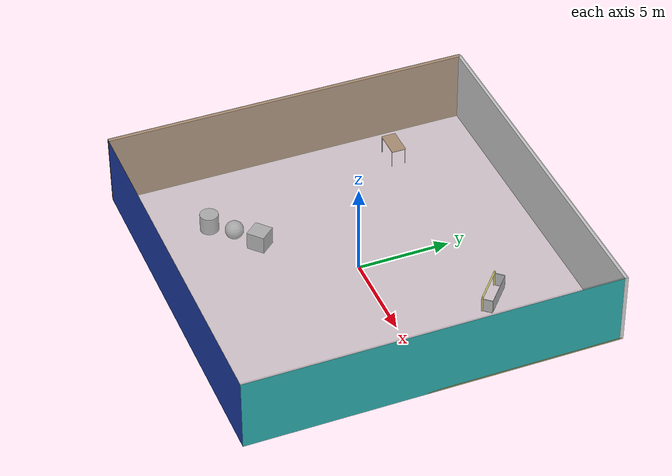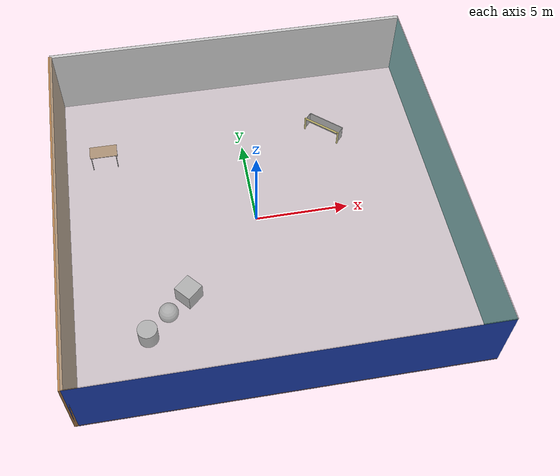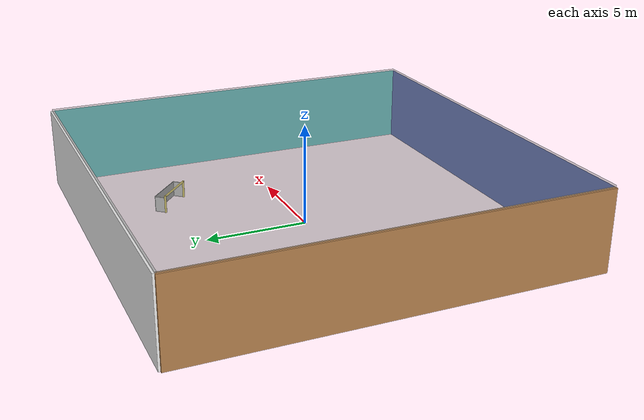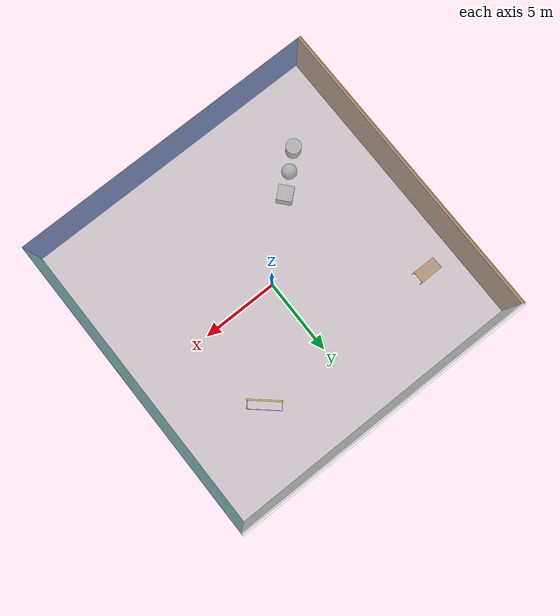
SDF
<sdf version="1.4">
 <world name="default">
  <physics type="ode">
   <max_step_size>0.001</max_step_size>
   <real_time_factor>1</real_time_factor>
   <real_time_update_rate>1000</real_time_update_rate>
   <gravity>0 0 -9.8</gravity>
  </physics>
  <scene><ambient>0.4 0.4 0.4 1</ambient><background>0.7 0.7 0.7 1</background><shadows>1</shadows></scene>
  <model name="Surrounding">
   <static>1</static>
   <link name="Ceiling">
    <collision name="Ceiling_Collision"><geometry><box><size>20 20 0.1</size></box></geometry></collision>
    <visual name="Ceiling_Visual">
     <geometry><box><size>20 20 0.1</size></box></geometry>
     <material>
      <script><uri>file://media/materials/scripts/gazebo.material</uri><name>Gazebo/GreyTransparent</name></script>
     </material>
    </visual>
    <pose>0 0 4.05 0 0 0</pose>
   </link>
   <link name="Wall_South">
    <collision name="Wall_South_Collision">
     <geometry><box><size>20 0 4</size></box></geometry>
     <pose>0 0 2 0 -0 0</pose>
    </collision>
    <visual name="Wall_South_Visual">
     <pose>0 0 2 0 -0 0</pose>
     <geometry><box><size>20 0 4</size></box></geometry>
     <material>
      <script><uri>file://media/materials/scripts/gazebo.material</uri><name>Gazebo/BlueLaser</name></script>
     </material>
    </visual>
    <velocity_decay><linear>0</linear><angular>0</angular></velocity_decay>
    <pose>0 -10 0 0 -0 0</pose>
   </link>
   <link name="Wall_East">
    <collision name="Wall_21_Collision">
     <geometry><box><size>20 0 4</size></box></geometry>
     <pose>0 0 2 0 -0 0</pose>
    </collision>
    <visual name="Wall_21_Visual">
     <pose>0 0 2 0 -0 0</pose>
     <geometry><box><size>20 0 4</size></box></geometry>
     <material>
      <script><uri>file://media/materials/scripts/gazebo.material</uri><name>Gazebo/TurquoiseGlow</name></script>
     </material>
    </visual>
    <velocity_decay><linear>0</linear><angular>0</angular></velocity_decay>
    <pose>10 0 0 0 -0 1.5708</pose>
   </link>
   <link name="Wall_North">
    <collision name="Wall_22_Collision">
     <geometry><box><size>20 0.2 4</size></box></geometry>
     <pose>0 0 2 0 -0 0</pose>
    </collision>
    <visual name="Wall_22_Visual">
     <pose>0 0 2 0 -0 0</pose>
     <geometry><box><size>20 0.2 4</size></box></geometry>
     <material>
      <script><uri>file://media/materials/scripts/gazebo.material</uri><name>Gazebo/WhiteGlow</name></script>
     </material>
    </visual>
    <velocity_decay><linear>0</linear><angular>0</angular></velocity_decay>
    <pose>0 10 0 0 -0 0</pose>
   </link>
   <link name="Wall_West">
    <collision name="Wall_23_Collision">
     <geometry><box><size>20 0.2 4</size></box></geometry>
     <pose>0 0 2 0 -0 0</pose>
    </collision>
    <visual name="Wall_23_Visual">
     <pose>0 0 2 0 -0 0</pose>
     <geometry><box><size>20 0.2 4</size></box></geometry>
     <material>
      <script><uri>file://media/materials/scripts/gazebo.material</uri><name>Gazebo/Wood</name></script>
     </material>
    </visual>
    <velocity_decay><linear>0</linear><angular>0</angular></velocity_decay>
    <pose>-10 0 0 0 0 -1.5708</pose>
   </link>
   <link name="Ground_link">
    <collision name="collision">
     <pose>0 0 .05 0 -0 0</pose>
     <geometry><box><size>20 20 0.1</size></box></geometry>
    </collision>
    <visual name="visual">
     <pose>0 0 .05 0 -0 0</pose>
     <geometry><box><size>20 20 0.1</size></box></geometry>
     <material>
      <script>
       <uri>file://media/materials/scripts/gazebo.material</uri>
       <name>Gazebo/OrangeTransparent</name>
      </script>
     </material>
    </visual>
   </link>
   <static>1</static>
  </model>
  <spherical_coordinates>
   <surface_model>EARTH_WGS84</surface_model>
   <latitude_deg>0</latitude_deg>
   <longitude_deg>0</longitude_deg>
   <elevation>0</elevation>
   <heading_deg>0</heading_deg>
  </spherical_coordinates>
  <light name="lightball_0" type="diffuse">
   <diffuse>0.8 0.8 0.8 1</diffuse>
   <specular>0.2 0.2 0.2 1</specular>
   <attenuation>
    <range>100</range>
    <constant>0.7</constant>
    <linear>0.01</linear>
    <quadratic>0.001</quadratic>
   </attenuation>
   <direction>-0.5 0.1 -0.9</direction>
   <pose>-3.6097096926 0.539363147321 1.78753598359 0 0 0</pose>
  </light>
  <light name="lightball_1" type="diffuse">
   <diffuse>0.8 0.8 0.8 1</diffuse>
   <specular>0.2 0.2 0.2 1</specular>
   <attenuation>
    <range>100</range>
    <constant>0.7</constant>
    <linear>0.01</linear>
    <quadratic>0.001</quadratic>
   </attenuation>
   <direction>-0.5 0.1 -0.9</direction>
   <pose>4.69171933344 -8.8822829705 0.739185051598 0 0 0</pose>
  </light>
  <light name="lightball_2" type="diffuse">
   <diffuse>0.8 0.8 0.8 1</diffuse>
   <specular>0.2 0.2 0.2 1</specular>
   <attenuation>
    <range>100</range>
    <constant>0.7</constant>
    <linear>0.01</linear>
    <quadratic>0.001</quadratic>
   </attenuation>
   <direction>-0.5 0.1 -0.9</direction>
   <pose>-0.48941270122 8.19715954063 1.70323371564 0 0 0</pose>
  </light>
  <light name="lightball_3" type="diffuse">
   <diffuse>0.8 0.8 0.8 1</diffuse>
   <specular>0.2 0.2 0.2 1</specular>
   <attenuation>
    <range>100</range>
    <constant>0.7</constant>
    <linear>0.01</linear>
    <quadratic>0.001</quadratic>
   </attenuation>
   <direction>-0.5 0.1 -0.9</direction>
   <pose>-5.34228358387 4.66218617358 0.654469410361 0 0 0</pose>
  </light>
  <light name="lightball_4" type="diffuse">
   <diffuse>0.8 0.8 0.8 1</diffuse>
   <specular>0.2 0.2 0.2 1</specular>
   <attenuation>
    <range>100</range>
    <constant>0.7</constant>
    <linear>0.01</linear>
    <quadratic>0.001</quadratic>
   </attenuation>
   <direction>-0.5 0.1 -0.9</direction>
   <pose>5.29087937349 2.54011037684 3.23792934517 0 0 0</pose>
  </light>
  <light name="lightball_5" type="diffuse">
   <diffuse>0.8 0.8 0.8 1</diffuse>
   <specular>0.2 0.2 0.2 1</specular>
   <attenuation>
    <range>100</range>
    <constant>0.7</constant>
    <linear>0.01</linear>
    <quadratic>0.001</quadratic>
   </attenuation>
   <direction>-0.5 0.1 -0.9</direction>
   <pose>5.54723101391 -3.5562406998 1.63672588387 0 0 0</pose>
  </light>
  <light name="lightball_6" type="diffuse">
   <diffuse>0.8 0.8 0.8 1</diffuse>
   <specular>0.2 0.2 0.2 1</specular>
   <attenuation>
    <range>100</range>
    <constant>0.7</constant>
    <linear>0.01</linear>
    <quadratic>0.001</quadratic>
   </attenuation>
   <direction>-0.5 0.1 -0.9</direction>
   <pose>-5.33786329497 2.24380328553 2.30087578509 0 0 0</pose>
  </light>
  <light name="lightball_7" type="diffuse">
   <diffuse>0.8 0.8 0.8 1</diffuse>
   <specular>0.2 0.2 0.2 1</specular>
   <attenuation>
    <range>100</range>
    <constant>0.7</constant>
    <linear>0.01</linear>
    <quadratic>0.001</quadratic>
   </attenuation>
   <direction>-0.5 0.1 -0.9</direction>
   <pose>4.33274368078 -7.01509729759 2.74917250404 0 0 0</pose>
  </light>
  <light name="lightball_8" type="diffuse">
   <diffuse>0.8 0.8 0.8 1</diffuse>
   <specular>0.2 0.2 0.2 1</specular>
   <attenuation>
    <range>100</range>
    <constant>0.7</constant>
    <linear>0.01</linear>
    <quadratic>0.001</quadratic>
   </attenuation>
   <direction>-0.5 0.1 -0.9</direction>
   <pose>-6.29699438021 -3.95751388177 1.28410513081 0 0 0</pose>
  </light>
  <light name="lightball_9" type="diffuse">
   <diffuse>0.8 0.8 0.8 1</diffuse>
   <specular>0.2 0.2 0.2 1</specular>
   <attenuation>
    <range>100</range>
    <constant>0.7</constant>
    <linear>0.01</linear>
    <quadratic>0.001</quadratic>
   </attenuation>
   <direction>-0.5 0.1 -0.9</direction>
   <pose>-6.63076298591 -5.75072268117 0.969612813406 0 0 0</pose>
  </light>
  <light name="lightball_10" type="diffuse">
   <diffuse>0.8 0.8 0.8 1</diffuse>
   <specular>0.2 0.2 0.2 1</specular>
   <attenuation>
    <range>100</range>
    <constant>0.7</constant>
    <linear>0.01</linear>
    <quadratic>0.001</quadratic>
   </attenuation>
   <direction>-0.5 0.1 -0.9</direction>
   <pose>-1.93785005086 -5.32786540258 1.45940986939 0 0 0</pose>
  </light>
  <include><uri>model://table</uri><pose>-7.7505283107 5.19322399257 0 0 0 3.13947971499</pose></include>
  <include>
   <uri>model://textured_shapes</uri>
   <pose>-5.25178117029 -4.88300539628 0 0 0 2.29527458765</pose>
  </include>
  <include>
   <uri>model://robocup_3Dsim_goal</uri>
   <pose>4.65899122519 5.16298816788 0 0 0 0.846827916457</pose>
  </include>
 </world>
</sdf>

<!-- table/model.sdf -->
<sdf version="1.5">
  <model name="table">
    <static>true</static>
    <link name="link">
      <collision name="surface">
        <pose>0 0 1.0 0 0 0</pose>
        <geometry>
          <box>
            <size>1.5 0.8 0.03</size>
          </box>
        </geometry>
        <surface>
          <friction>
            <ode>
              <mu>0.6</mu>
              <mu2>0.6</mu2>
            </ode>
          </friction>
        </surface>
      </collision>
      <visual name="visual1">
        <pose>0 0 1.0 0 0 0</pose>
        <geometry>
          <box>
            <size>1.5 0.8 0.03</size>
          </box>
        </geometry>
        <material>
          <script>
            <uri>model://media/materials/scripts/gazebo.material</uri>
            <name>Gazebo/Wood</name>
          </script>
        </material>
      </visual>
      <collision name="front_left_leg">
        <pose>0.68 0.38 0.5 0 0 0</pose>
        <geometry>
          <cylinder>
            <radius>0.02</radius>
            <length>1.0</length>
          </cylinder>
        </geometry>
      </collision>
      <visual name="front_left_leg">
        <pose>0.68 0.38 0.5 0 0 0</pose>
        <geometry>
          <cylinder>
            <radius>0.02</radius>
            <length>1.0</length>
          </cylinder>
        </geometry>
        <material>
          <script>
            <uri>model://media/materials/scripts/gazebo.material</uri>
            <name>Gazebo/Grey</name>
          </script>
        </material>
      </visual>
      <collision name="front_right_leg">
        <pose>0.68 -0.38 0.5 0 0 0</pose>
        <geometry>
          <cylinder>
            <radius>0.02</radius>
            <length>1.0</length>
          </cylinder>
        </geometry>
      </collision>
      <visual name="front_right_leg">
        <pose>0.68 -0.38 0.5 0 0 0</pose>
        <geometry>
          <cylinder>
            <radius>0.02</radius>
            <length>1.0</length>
          </cylinder>
        </geometry>
        <material>
          <script>
            <uri>model://media/materials/scripts/gazebo.material</uri>
            <name>Gazebo/Grey</name>
          </script>
        </material>
      </visual>
      <collision name="back_right_leg">
        <pose>-0.68 -0.38 0.5 0 0 0</pose>
        <geometry>
          <cylinder>
            <radius>0.02</radius>
            <length>1.0</length>
          </cylinder>
        </geometry>
      </collision>
      <visual name="back_right_leg">
        <pose>-0.68 -0.38 0.5 0 0 0</pose>
        <geometry>
          <cylinder>
            <radius>0.02</radius>
            <length>1.0</length>
          </cylinder>
        </geometry>
        <material>
          <script>
            <uri>model://media/materials/scripts/gazebo.material</uri>
            <name>Gazebo/Grey</name>
          </script>
        </material>
      </visual>
      <collision name="back_left_leg">
        <pose>-0.68 0.38 0.5 0 0 0</pose>
        <geometry>
          <cylinder>
            <radius>0.02</radius>
            <length>1.0</length>
          </cylinder>
        </geometry>
      </collision>
      <visual name="back_left_leg">
        <pose>-0.68 0.38 0.5 0 0 0</pose>
        <geometry>
          <cylinder>
            <radius>0.02</radius>
            <length>1.0</length>
          </cylinder>
        </geometry>
        <material>
          <script>
            <uri>model://media/materials/scripts/gazebo.material</uri>
            <name>Gazebo/Grey</name>
          </script>
        </material>
      </visual>
    </link>
  </model>
</sdf>

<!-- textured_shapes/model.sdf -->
<sdf version="1.6">
  <model name="textured_shapes">
    <pose>0 0 0.5 0 0 0</pose>
    <link name="box">
      <pose>0 -1.5 0 0 0 0</pose>
      <collision name="collision">
        <geometry>
          <box>
            <size>1 1 1</size>
          </box>
        </geometry>
      </collision>
      <visual name="visual">
        <geometry>
          <box>
            <size>1 1 1</size>
          </box>
        </geometry>
        <material>
          <script>
            <uri>model://../model_source/models/textured_shapes/materials/scripts</uri>
            <uri>model://../model_source/models/textured_shapes/materials/textures</uri>
            <name>TexturedShape/Squares</name>
          </script>
        </material>
      </visual>
    </link>
    <link name="sphere">
      <collision name="collision">
        <geometry>
          <sphere>
            <radius>0.5</radius>
          </sphere>
        </geometry>
      </collision>
      <visual name="visual">
        <geometry>
          <sphere>
            <radius>0.5</radius>
          </sphere>
        </geometry>
        <material>
          <script>
            <uri>model://../model_source/models/textured_shapes/materials/scripts</uri>
            <uri>model://../model_source/models/textured_shapes/materials/textures</uri>
            <name>TexturedShape/Squares</name>
          </script>
        </material>
      </visual>
    </link>
    <link name="cylinder">
      <pose>0 1.5 0 0 0 0</pose>
      <collision name="collision">
        <geometry>
          <cylinder>
            <radius>0.5</radius>
            <length>1</length>
          </cylinder>
        </geometry>
      </collision>
      <visual name="visual">
        <geometry>
          <cylinder>
            <radius>0.5</radius>
            <length>1</length>
          </cylinder>
        </geometry>
        <material>
          <script>
            <uri>model://../model_source/models/textured_shapes/materials/scripts</uri>
            <uri>model://../model_source/models/textured_shapes/materials/textures</uri>
            <name>TexturedShape/Squares</name>
          </script>
        </material>
      </visual>
    </link>
  </model>
</sdf>

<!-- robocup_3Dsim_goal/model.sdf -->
<sdf version="1.5">
  <model name="robocup_3d_goal">
    <static>true</static>
    <link name="left_post">
      <pose>0 1.05 0.45 0 0 0</pose>
      <collision name="collision">
        <geometry>
          <cylinder>
            <radius>0.05</radius>
            <length>0.9</length>
          </cylinder>
        </geometry>
      </collision>
      <visual name="visual">
        <geometry>
          <cylinder>
            <radius>0.05</radius>
            <length>0.9</length>
          </cylinder>
        </geometry>
        <material>
          <script>
            <uri>file://media/materials/scripts/gazebo.material</uri>
            <name>Gazebo/ZincYellow</name>
          </script>
        </material>
      </visual>
    </link>
    <link name="left_support_horiz_lower">
      <pose>0.30 1.05 0.01 0 0 0</pose>
      <collision name="collision">
        <geometry>
          <box>
            <size>0.50 0.02 0.02</size>
          </box>
        </geometry>
      </collision>
      <visual name="visual">
        <geometry>
          <box>
            <size>0.50 0.02 0.02</size>
          </box>
        </geometry>
        <material>
          <script>
            <uri>file://media/materials/scripts/gazebo.material</uri>
            <name>Gazebo/White</name>
          </script>
        </material>
      </visual>
    </link>
    <link name="left_support_horiz_upper">
      <pose>0.30 1.05 0.79 0 0 0</pose>
      <collision name="collision">
        <geometry>
          <box>
            <size>0.50 0.02 0.02</size>
          </box>
        </geometry>
      </collision>
      <visual name="visual">
        <geometry>
          <box>
            <size>0.50 0.02 0.02</size>
          </box>
        </geometry>
        <material>
          <script>
            <uri>file://media/materials/scripts/gazebo.material</uri>
            <name>Gazebo/White</name>
          </script>
        </material>
      </visual>
    </link>
    <link name="left_support_vertical">
      <pose>0.56 1.05 0.4 0 1.5708 0</pose>
      <collision name="collision">
        <geometry>
          <box>
            <size>0.80 0.02 0.02</size>
          </box>
        </geometry>
      </collision>
      <visual name="visual">
        <geometry>
          <box>
            <size>0.80 0.02 0.02</size>
          </box>
        </geometry>
        <material>
          <script>
            <uri>file://media/materials/scripts/gazebo.material</uri>
            <name>Gazebo/White</name>
          </script>
        </material>
      </visual>
    </link>
    <link name="right_support_horiz_lower">
      <pose>0.30 -1.05 0.01 0 0 0</pose>
      <collision name="collision">
        <geometry>
          <box>
            <size>0.50 0.02 0.02</size>
          </box>
        </geometry>
      </collision>
      <visual name="visual">
        <geometry>
          <box>
            <size>0.50 0.02 0.02</size>
          </box>
        </geometry>
        <material>
          <script>
            <uri>file://media/materials/scripts/gazebo.material</uri>
            <name>Gazebo/White</name>
          </script>
        </material>
      </visual>
    </link>
    <link name="right_support_horiz_upper">
      <pose>0.30 -1.05 0.79 0 0 0</pose>
      <collision name="collision">
        <geometry>
          <box>
            <size>0.50 0.02 0.02</size>
          </box>
        </geometry>
      </collision>
      <visual name="visual">
        <geometry>
          <box>
            <size>0.50 0.02 0.02</size>
          </box>
        </geometry>
        <material>
          <script>
            <uri>file://media/materials/scripts/gazebo.material</uri>
            <name>Gazebo/White</name>
          </script>
        </material>
      </visual>
    </link>
    <link name="right_support_vertical">
      <pose>0.56 -1.05 0.4 0 1.5708 0</pose>
      <collision name="collision">
        <geometry>
          <box>
            <size>0.80 0.02 0.02</size>
          </box>
        </geometry>
      </collision>
      <visual name="visual">
        <geometry>
          <box>
            <size>0.80 0.02 0.02</size>
          </box>
        </geometry>
        <material>
          <script>
            <uri>file://media/materials/scripts/gazebo.material</uri>
            <name>Gazebo/White</name>
          </script>
        </material>
      </visual>
    </link>
    <link name="center_support_horiz_lower">
      <pose>0.56 0 0.01 0 1.5708 0</pose>
      <collision name="collision">
        <geometry>
          <box>
            <size>0.02 2.08 0.02</size>
          </box>
        </geometry>
      </collision>
      <visual name="visual">
        <geometry>
          <box>
            <size>0.02 2.08 0.02</size>
          </box>
        </geometry>
        <material>
          <script>
            <uri>file://media/materials/scripts/gazebo.material</uri>
            <name>Gazebo/White</name>
          </script>
        </material>
      </visual>
    </link>
    <link name="center_support_horiz_upper">
      <pose>0.56 0 0.79 0 1.5708 0</pose>
      <collision name="collision">
        <geometry>
          <box>
            <size>0.02 2.08 0.02</size>
          </box>
        </geometry>
      </collision>
      <visual name="visual">
        <geometry>
          <box>
            <size>0.02 2.08 0.02</size>
          </box>
        </geometry>
        <material>
          <script>
            <uri>file://media/materials/scripts/gazebo.material</uri>
            <name>Gazebo/White</name>
          </script>
        </material>
      </visual>
    </link>
    <link name="right_post">
      <pose>0 -1.05 0.45 0 0 0</pose>
      <collision name="collision">
        <geometry>
          <cylinder>
            <radius>0.05</radius>
            <length>0.9</length>
          </cylinder>
        </geometry>
      </collision>
      <visual name="visual">
        <geometry>
          <cylinder>
            <radius>0.05</radius>
            <length>0.9</length>
          </cylinder>
        </geometry>
        <material>
          <script>
            <uri>file://media/materials/scripts/gazebo.material</uri>
            <name>Gazebo/ZincYellow</name>
          </script>
        </material>
      </visual>
    </link>
    <link name="crossbar">
      <pose>0 0 0.85 1.57 1.57 0</pose>
      <collision name="collision">
        <geometry>
          <cylinder>
            <radius>0.05</radius>
            <length>2.0</length>
          </cylinder>
        </geometry>
      </collision>
      <visual name="visual">
        <geometry>
          <cylinder>
            <radius>0.05</radius>
            <length>2.0</length>
          </cylinder>
        </geometry>
        <material>
          <script>
            <uri>file://media/materials/scripts/gazebo.material</uri>
            <name>Gazebo/ZincYellow</name>
          </script>
        </material>
      </visual>
    </link>
    <link name="center_net">
      <pose>0.56 0 0.40 0 0 0</pose>
      <collision name="collision">
        <geometry>
          <box>
            <size>0.01 2.1 0.80</size>
          </box>
        </geometry>
      </collision>
      <visual name="visual">
        <geometry>
          <box>
            <size>0.01 2.1 0.80</size>
          </box>
        </geometry>
        <material>
          <script>
            <uri>model://../model_source/models/robocup09_spl_field/materials/scripts/</uri>
            <uri>model://../model_source/models/robocup09_spl_field/materials/textures/</uri>
            <name>RoboCup/Net</name>
          </script>
        </material>
      </visual>
    </link>
    <link name="left_net">
      <pose>0.30 1.05 0.40 0 0 0</pose>
      <collision name="collision">
        <geometry>
          <box>
            <size>0.50 0.01 0.76</size>
          </box>
        </geometry>
      </collision>
      <visual name="visual">
        <geometry>
          <box>
            <size>0.50 0.01 0.76</size>
          </box>
        </geometry>
        <material>
          <script>
            <uri>model://../model_source/models/robocup09_spl_field/materials/scripts/</uri>
            <uri>model://../model_source/models/robocup09_spl_field/materials/textures/</uri>
            <name>RoboCup/Net</name>
          </script>
        </material>
      </visual>
    </link>
    <link name="right_net">
      <pose>0.30 -1.05 0.40 0 0 0</pose>
      <collision name="collision">
        <geometry>
          <box>
            <size>0.50 0.01 0.76</size>
          </box>
        </geometry>
      </collision>
      <visual name="visual">
        <geometry>
          <box>
            <size>0.50 0.01 0.76</size>
          </box>
        </geometry>
        <material>
          <script>
            <uri>model://../model_source/models/robocup09_spl_field/materials/scripts/</uri>
            <uri>model://../model_source/models/robocup09_spl_field/materials/textures/</uri>
            <name>RoboCup/Net</name>
          </script>
        </material>
      </visual>
    </link>
  </model>
</sdf>
